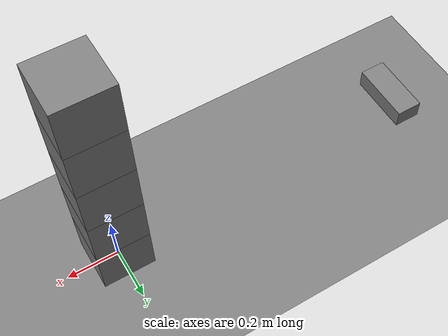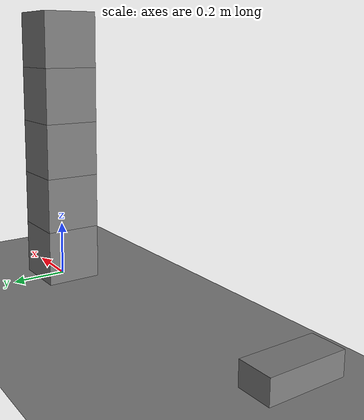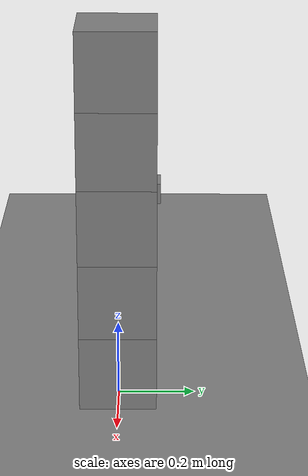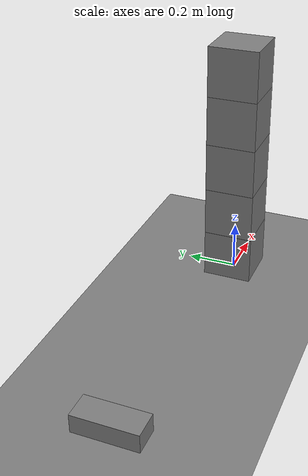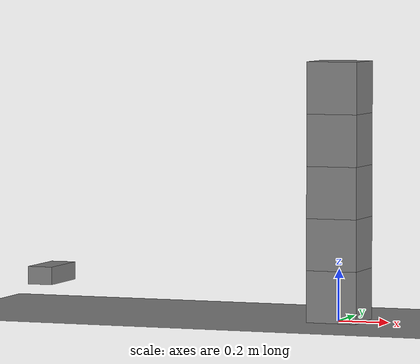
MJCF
<mujoco model="stack_fixture">
  <option timestep="0.002"/>
  <worldbody>
    <geom name="floor" type="plane" size="6 6 0.1" friction="0.8 0.005 0.0001"/>
    <body name="block1" pos="0 0 0.100">
      <freejoint/>
      <geom name="block1" type="box" size="0.1 0.1 0.1" mass="0.5" friction="0.6 0.005 0.0001"/>
    </body>
    <body name="block2" pos="0 0 0.300">
      <freejoint/>
      <geom name="block2" type="box" size="0.1 0.1 0.1" mass="0.5" friction="0.6 0.005 0.0001"/>
    </body>
    <body name="block3" pos="0 0 0.500">
      <freejoint/>
      <geom name="block3" type="box" size="0.1 0.1 0.1" mass="0.5" friction="0.6 0.005 0.0001"/>
    </body>
    <body name="block4" pos="0 0 0.700">
      <freejoint/>
      <geom name="block4" type="box" size="0.1 0.1 0.1" mass="0.5" friction="0.6 0.005 0.0001"/>
    </body>
    <body name="block5" pos="0 0 0.900">
      <freejoint/>
      <geom name="block5" type="box" size="0.1 0.1 0.1" mass="0.5" friction="0.6 0.005 0.0001"/>
    </body>
    <body name="pusher" pos="-1.2 0 0.145">
      <joint name="pusher_slide" type="slide" axis="1 0 0"/>
      <geom name="pusher" type="box" size="0.05 0.12 0.035" mass="2" friction="0.3 0.005 0.0001"/>
    </body>
  </worldbody>
  <actuator>
    <velocity name="pusher_drive" joint="pusher_slide" kv="100" forcelimited="true" forcerange="-100 100"/>
  </actuator>
  <keyframe>
    <key name="start" qpos="0 0 0.100 1 0 0 0  0 0 0.300 1 0 0 0  0 0 0.500 1 0 0 0  0 0 0.700 1 0 0 0  0 0 0.900 1 0 0 0  0" qvel="0 0 0 0 0 0  0 0 0 0 0 0  0 0 0 0 0 0  0 0 0 0 0 0  0 0 0 0 0 0  0" ctrl="1.5"/>
  </keyframe>
</mujoco>
